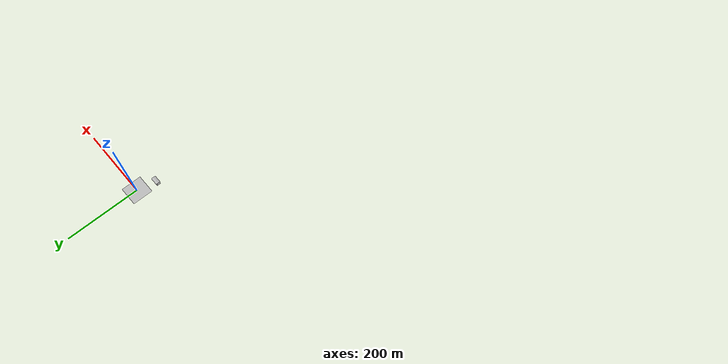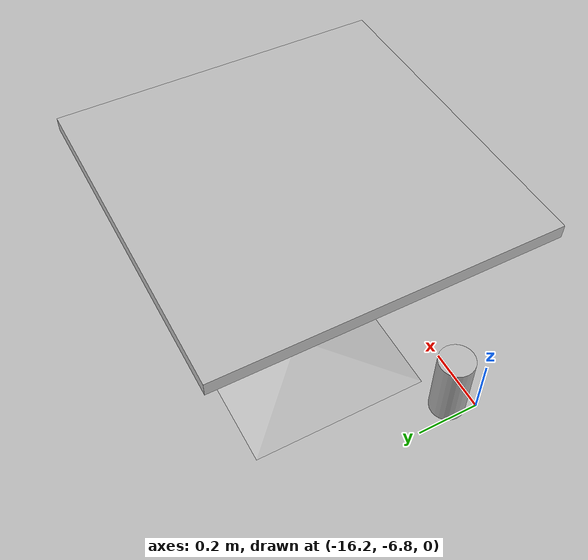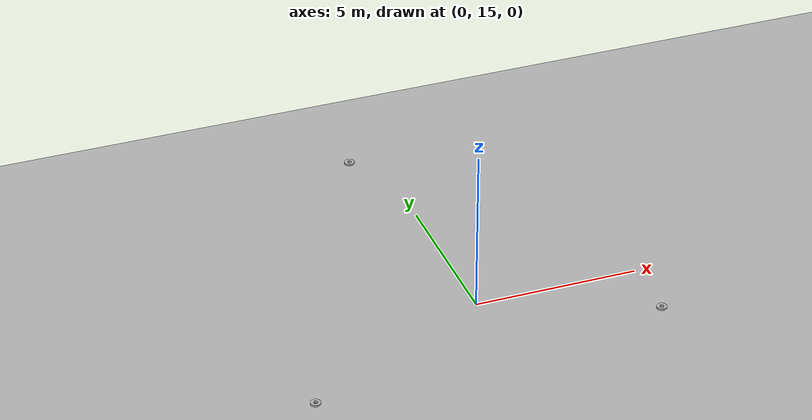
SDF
<sdf version="1.7">
 <world name="default">
  <plugin name="mrs_gazebo_static_transform_republisher_plugin" filename="libMrsGazeboCommonResources_StaticTransformRepublisher.so"/>
  <spherical_coordinates>
   <surface_model>EARTH_WGS84</surface_model>
   <latitude_deg>47.3977</latitude_deg>
   <longitude_deg>8.54559</longitude_deg>
   <elevation>0</elevation>
   <heading_deg>0</heading_deg>
  </spherical_coordinates>
  <physics name="default_physics" default="0" type="ode">
   <ode>
    <solver>
     <type>quick</type>
     <iters>10</iters>
     <sor>1.3</sor>
     <use_dynamic_moi_rescaling>0</use_dynamic_moi_rescaling>
    </solver>
    <constraints>
     <cfm>0</cfm>
     <erp>0.2</erp>
     <contact_max_correcting_vel>1000</contact_max_correcting_vel>
     <contact_surface_layer>0.001</contact_surface_layer>
    </constraints>
   </ode>
   <max_step_size>0.004</max_step_size>
   <real_time_factor>1</real_time_factor>
   <real_time_update_rate>250</real_time_update_rate>
  </physics>
  <scene><shadows>false</shadows><ambient>0.4 0.4 0.4 1</ambient><background>0.7 0.7 0.7 1</background></scene>
  <light name="sun" type="directional">
   <pose>0 0 1000 0.4 0.2 0</pose>
   <diffuse>1 1 1 1</diffuse>
   <specular>0.6 0.6 0.6 1</specular>
   <direction>0.1 0.1 -0.9</direction>
   <attenuation>
    <range>20</range>
    <constant>0.5</constant>
    <linear>0.01</linear>
    <quadratic>0.001</quadratic>
   </attenuation>
   <spot><inner_angle>0</inner_angle><outer_angle>0</outer_angle><falloff>0</falloff></spot>
  </light>
  <model name="ground_plane">
   <static>1</static>
   <link name="link">
    <collision name="collision">
     <geometry><plane><normal>0 0 1</normal><size>250 250</size></plane></geometry>
     <surface><friction><ode><mu>1</mu><mu2>1</mu2></ode></friction></surface>
    </collision>
    <visual name="grass">
     <cast_shadows>0</cast_shadows>
     <geometry><mesh><uri>file://grass_plane/meshes/grass_plane.dae</uri></mesh></geometry>
    </visual>
   </link>
  </model>
  <model name="the_void">
   <static>1</static>
   <link name="link">
    <pose>0 0 0.1 0 -0 0</pose>
    <visual name="the_void">
     <pose>0 0 2 0 -0 0</pose>
     <geometry><sphere><radius>0.25</radius></sphere></geometry>
     <material>
      <script><uri>file://media/materials/scripts/Gazebo.material</uri><name>Gazebo/Black</name></script>
     </material>
    </visual>
   </link>
   <pose>-1000 -1000 0 0 -0 0</pose>
  </model>
  <plugin name="mrs_gazebo_rviz_cam_synchronizer" filename="libMrsGazeboCommonResources_RvizCameraSynchronizer.so">
   <target_frame_id>gazebo_user_camera</target_frame_id>
   <world_origin_frame_id>uav1/gps_origin</world_origin_frame_id>
   <frame_to_follow>uav1</frame_to_follow>
  </plugin>
  <gravity>0 0 -9.8066</gravity>
  <magnetic_field>6e-06 2.3e-05 -4.2e-05</magnetic_field>
  <atmosphere type="adiabatic"/>
  <model name="fire_station">
   <static>1</static>
   <link name="link">
    <collision name="main">
     <pose>0 -0.135 5 0 -0 0</pose>
     <geometry><box><size>19.98 9.68 10</size></box></geometry>
    </collision>
    <collision name="front_top">
     <pose>0 4.957 7 0 -0 0</pose>
     <geometry><box><size>20 0.515 6</size></box></geometry>
    </collision>
    <collision name="column_0">
     <pose>9.333 4.957 2 0 -0 0</pose>
     <geometry><box><size>1.315 0.515 4</size></box></geometry>
    </collision>
    <collision name="column_1">
     <pose>3.33 4.957 2 0 -0 0</pose>
     <geometry><box><size>2.63 0.515 4</size></box></geometry>
    </collision>
    <collision name="column_2">
     <pose>-3.33 4.957 2 0 -0 0</pose>
     <geometry><box><size>2.63 0.515 4</size></box></geometry>
    </collision>
    <collision name="column_3">
     <pose>-9.333 4.957 2 0 -0 0</pose>
     <geometry><box><size>1.315 0.515 4</size></box></geometry>
    </collision>
    <collision name="roof_back">
     <pose>0 -2.742 10.467 0.25 -0 0</pose>
     <geometry><box><size>21.47 6.12 0.28</size></box></geometry>
    </collision>
    <collision name="roof_front">
     <pose>0 3.12 10.467 -0.25 0 0</pose>
     <geometry><box><size>21.47 6.12 0.28</size></box></geometry>
    </collision>
    <collision name="roof_base">
     <pose>0 0.188 9.705 0 -0 0</pose>
     <geometry><box><size>21.47 11.86 0.28</size></box></geometry>
    </collision>
    <collision name="roof_filling_0">
     <pose>0 0.188 9.985 0 -0 0</pose>
     <geometry><box><size>21.47 9.53 0.28</size></box></geometry>
    </collision>
    <collision name="roof_filling_1">
     <pose>0 0.188 10.14 0 -0 0</pose>
     <geometry><box><size>21.47 8.41 0.28</size></box></geometry>
    </collision>
    <collision name="roof_filling_2">
     <pose>0 0.188 10.42 0 -0 0</pose>
     <geometry><box><size>21.47 6.25 0.28</size></box></geometry>
    </collision>
    <collision name="roof_filling_3">
     <pose>0 0.188 10.7 0 -0 0</pose>
     <geometry><box><size>21.47 4.05 0.28</size></box></geometry>
    </collision>
    <collision name="roof_filling_4">
     <pose>0 0.188 10.98 0 -0 0</pose>
     <geometry><box><size>21.47 1.83 0.28</size></box></geometry>
    </collision>
    <visual name="visual">
     <geometry><mesh><uri>model://fire_station/meshes/fire_station.dae</uri></mesh></geometry>
    </visual>
   </link>
   <pose>-13.5887 -50.642 0 0 -0 0</pose>
  </model>
  <model name="cafe_table">
   <static>1</static>
   <link name="link">
    <collision name="surface">
     <pose>0 0 0.755 0 -0 0</pose>
     <geometry><box><size>0.913 0.913 0.04</size></box></geometry>
    </collision>
    <collision name="column">
     <pose>0 0 0.37 0 -0 0</pose>
     <geometry><box><size>0.042 0.042 0.74</size></box></geometry>
    </collision>
    <collision name="base">
     <pose>0 0 0.02 0 -0 0</pose>
     <geometry><box><size>0.56 0.56 0.04</size></box></geometry>
    </collision>
    <visual name="visual">
     <geometry><mesh><uri>model://cafe_table/meshes/cafe_table.dae</uri></mesh></geometry>
    </visual>
   </link>
   <pose>-15.7741 -6.42405 0 0 -0 0</pose>
  </model>
  <model name="beer">
   <link name="link">
    <pose>0 0 0.115 0 -0 0</pose>
    <inertial>
     <mass>0.39</mass>
     <inertia><ixx>0.00058</ixx><ixy>0</ixy><ixz>0</ixz><iyy>0.00058</iyy><iyz>0</iyz><izz>0.00019</izz></inertia>
    </inertial>
    <collision name="collision">
     <geometry><cylinder><radius>0.055</radius><length>0.23</length></cylinder></geometry>
    </collision>
    <visual name="visual">
     <geometry><cylinder><radius>0.055</radius><length>0.23</length></cylinder></geometry>
     <material>
      <script>
       <uri>model://beer/materials/scripts</uri>
       <uri>model://beer/materials/textures</uri>
       <name>Beer/Diffuse</name>
      </script>
     </material>
    </visual>
   </link>
   <pose>-16.1547 -6.7254 0 0 -0 0</pose>
  </model>
  <model name="disk_part4">
   <link name="link">
    <inertial>
     <pose>0 0 0.02895 0 -0 0</pose>
     <mass>0.5</mass>
     <inertia>
      <ixx>0.00321218</ixx>
      <ixy>0</ixy>
      <ixz>0</ixz>
      <iyy>0.00321218</iyy>
      <iyz>0</iyz>
      <izz>0.00614499</izz>
     </inertia>
    </inertial>
    <collision name="collision">
     <pose>0 0 0.02895 0 -0 0</pose>
     <geometry><cylinder><length>0.0579</length><radius>0.15678</radius></cylinder></geometry>
    </collision>
    <visual name="visual">
     <geometry><mesh><uri>model://disk_part/meshes/disk.dae</uri></mesh></geometry>
     <material>
      <script>
       <uri>model://arm_part/materials/scripts</uri>
       <uri>model://arm_part/materials/textures</uri>
       <name>ArmPart/Diffuse</name>
      </script>
     </material>
    </visual>
   </link>
   <pose>-0.92624 23.46210 0 0 -0 0</pose>
  </model>
  <model name="disk_part5">
   <link name="link">
    <inertial>
     <pose>0 0 0.02895 0 -0 0</pose>
     <mass>0.5</mass>
     <inertia>
      <ixx>0.00321218</ixx>
      <ixy>0</ixy>
      <ixz>0</ixz>
      <iyy>0.00321218</iyy>
      <iyz>0</iyz>
      <izz>0.00614499</izz>
     </inertia>
    </inertial>
    <collision name="collision">
     <pose>0 0 0.02895 0 -0 0</pose>
     <geometry><cylinder><length>0.0579</length><radius>0.15678</radius></cylinder></geometry>
    </collision>
    <visual name="visual">
     <geometry><mesh><uri>model://disk_part/meshes/disk.dae</uri></mesh></geometry>
     <material>
      <script>
       <uri>model://arm_part/materials/scripts</uri>
       <uri>model://arm_part/materials/textures</uri>
       <name>ArmPart/Diffuse</name>
      </script>
     </material>
    </visual>
   </link>
   <pose>-6 12.0 0 0 -0 0</pose>
  </model>
  <model name="disk_part6">
   <link name="link">
    <inertial>
     <pose>0 0 0.02895 0 -0 0</pose>
     <mass>0.5</mass>
     <inertia>
      <ixx>0.00321218</ixx>
      <ixy>0</ixy>
      <ixz>0</ixz>
      <iyy>0.00321218</iyy>
      <iyz>0</iyz>
      <izz>0.00614499</izz>
     </inertia>
    </inertial>
    <collision name="collision">
     <pose>0 0 0.02895 0 -0 0</pose>
     <geometry><cylinder><length>0.0579</length><radius>0.15678</radius></cylinder></geometry>
    </collision>
    <visual name="visual">
     <geometry><mesh><uri>model://disk_part/meshes/disk.dae</uri></mesh></geometry>
     <material>
      <script>
       <uri>model://arm_part/materials/scripts</uri>
       <uri>model://arm_part/materials/textures</uri>
       <name>ArmPart/Diffuse</name>
      </script>
     </material>
    </visual>
   </link>
   <pose>5 13.0 0 0 -0 0</pose>
  </model>
 </world>
</sdf>
